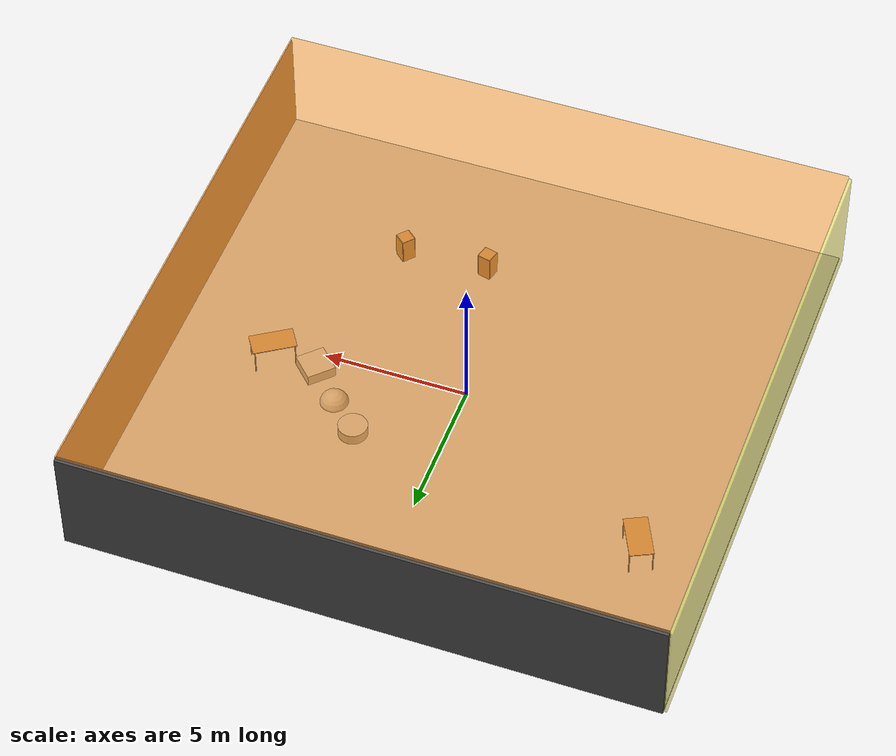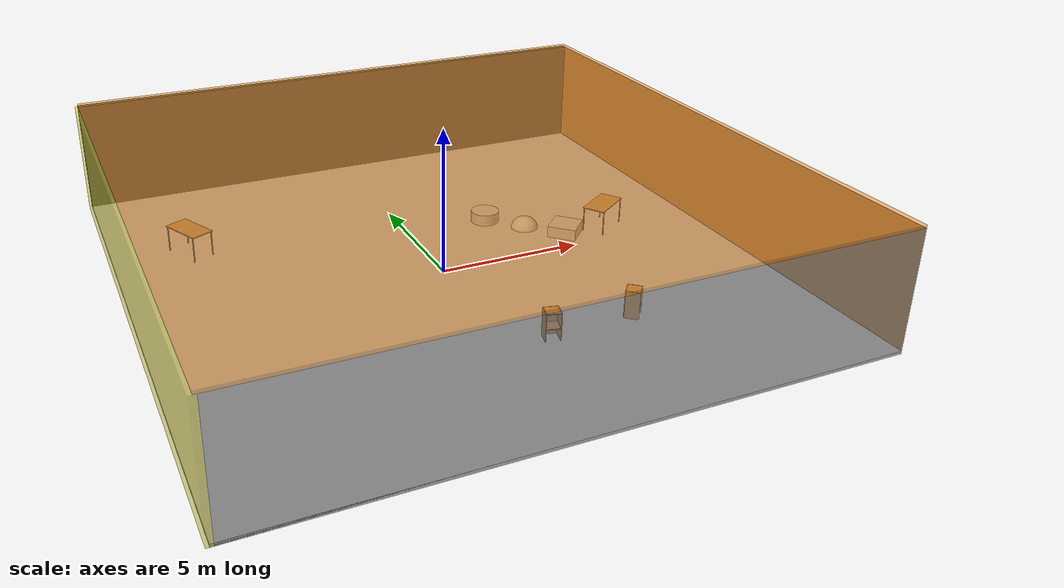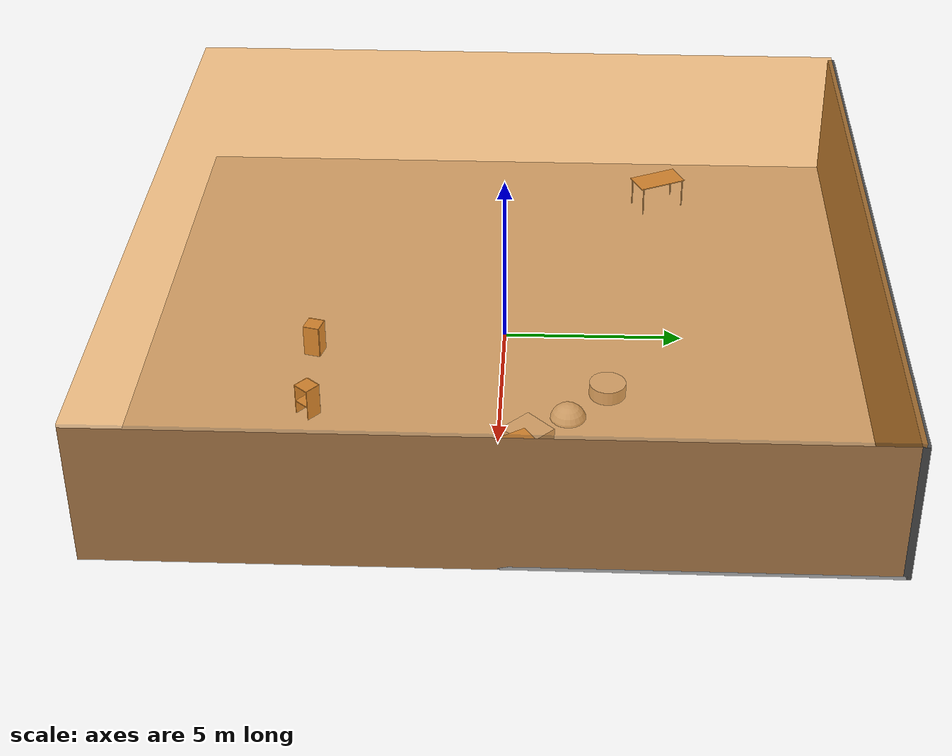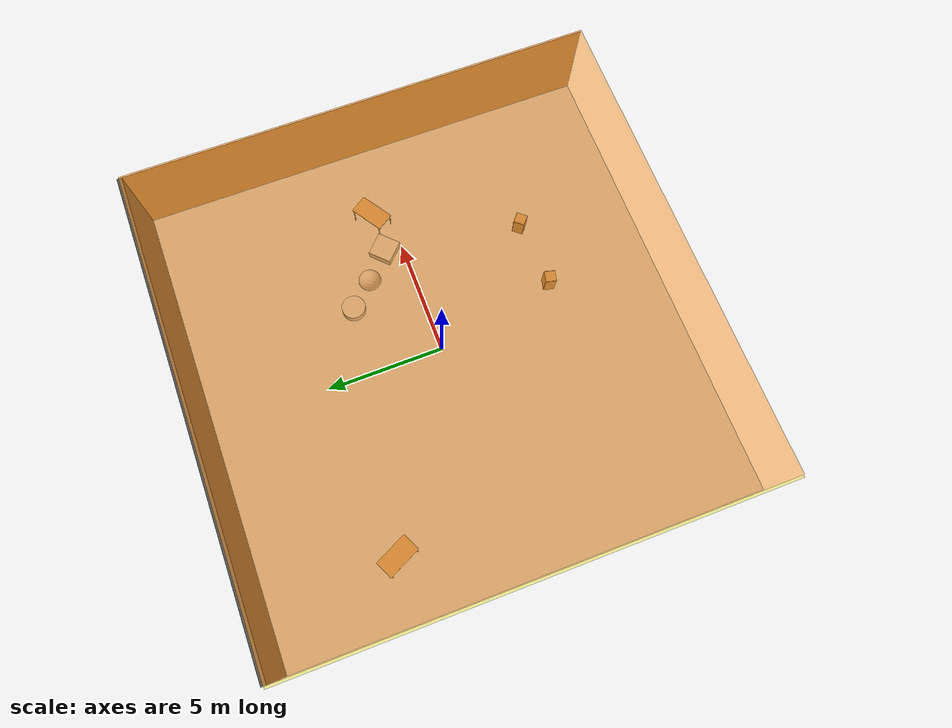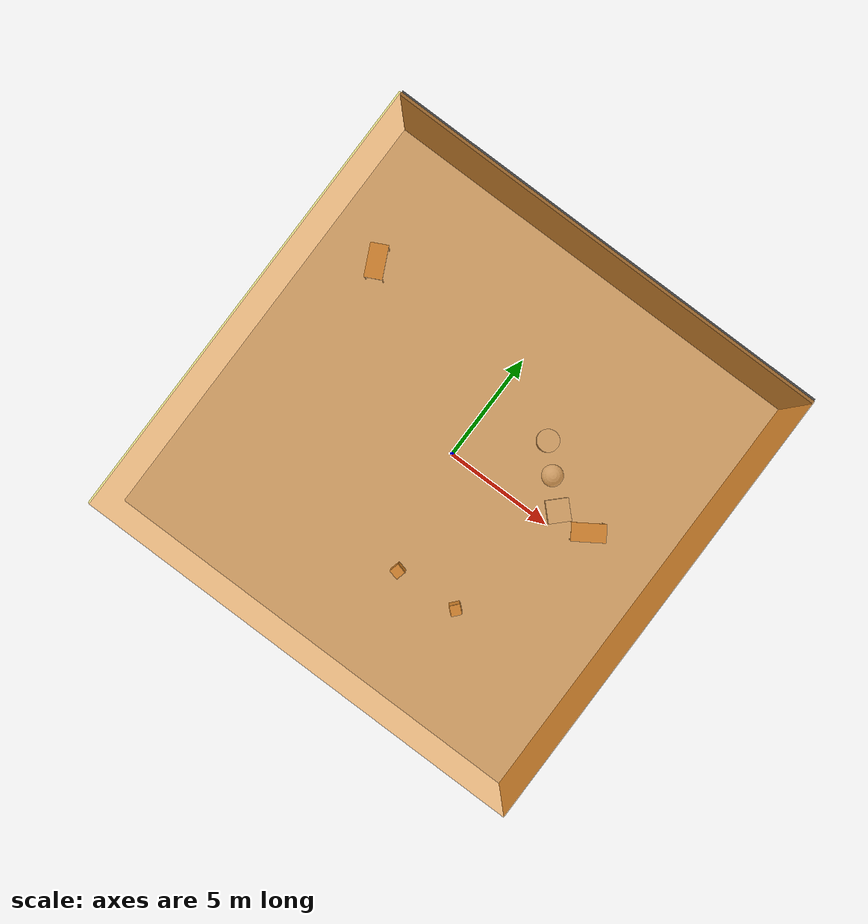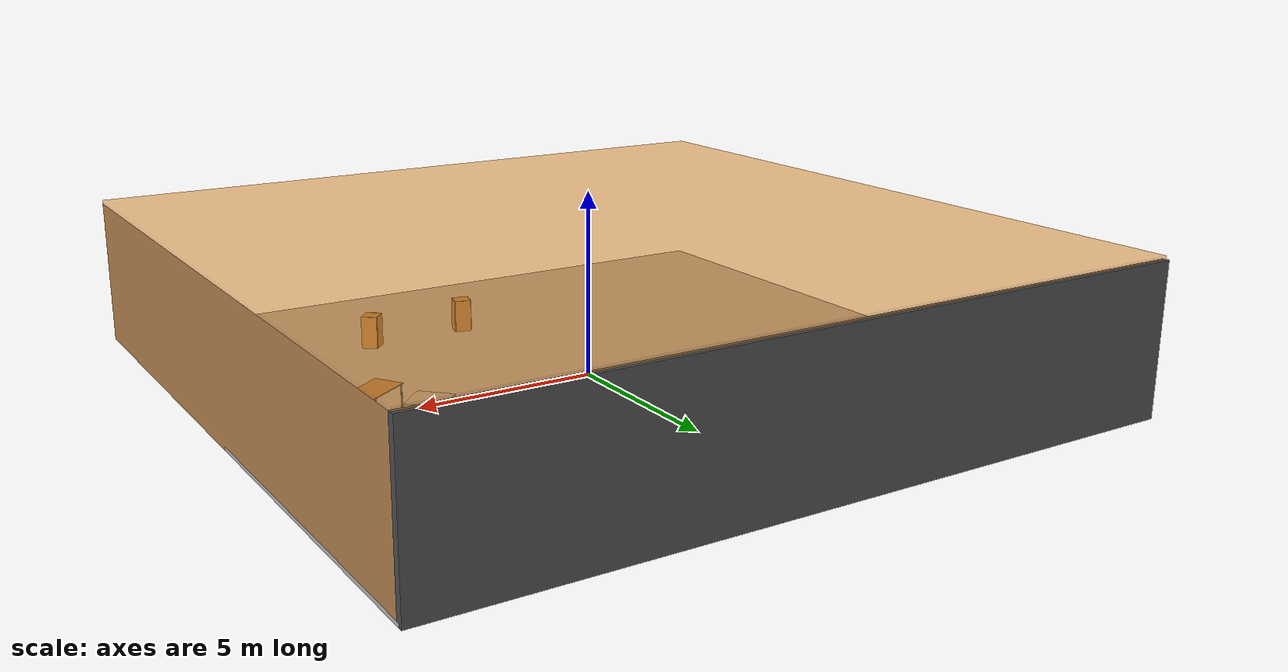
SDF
<sdf version="1.4">
 <world name="default">
  <physics type="ode">
   <max_step_size>0.001</max_step_size>
   <real_time_factor>1</real_time_factor>
   <real_time_update_rate>1000</real_time_update_rate>
   <gravity>0 0 -9.8</gravity>
  </physics>
  <scene><ambient>0.4 0.4 0.4 1</ambient><background>0.7 0.7 0.7 1</background><shadows>1</shadows></scene>
  <model name="Surrounding">
   <static>1</static>
   <link name="Ceiling">
    <collision name="Ceiling_Collision"><geometry><box><size>20 20 0.1</size></box></geometry></collision>
    <visual name="Ceiling_Visual">
     <geometry><box><size>20 20 0.1</size></box></geometry>
     <material>
      <script>
       <uri>file://media/materials/scripts/gazebo.material</uri>
       <name>Gazebo/OrangeTransparent</name>
      </script>
     </material>
    </visual>
    <pose>0 0 4.05 0 0 0</pose>
   </link>
   <link name="Wall_South">
    <collision name="Wall_South_Collision">
     <geometry><box><size>20 0 4</size></box></geometry>
     <pose>0 0 2 0 -0 0</pose>
    </collision>
    <visual name="Wall_South_Visual">
     <pose>0 0 2 0 -0 0</pose>
     <geometry><box><size>20 0 4</size></box></geometry>
     <material>
      <script><uri>file://media/materials/scripts/gazebo.material</uri><name>Gazebo/GreyTransparent</name></script>
     </material>
    </visual>
    <velocity_decay><linear>0</linear><angular>0</angular></velocity_decay>
    <pose>0 -10 0 0 -0 0</pose>
   </link>
   <link name="Wall_East">
    <collision name="Wall_21_Collision">
     <geometry><box><size>20 0 4</size></box></geometry>
     <pose>0 0 2 0 -0 0</pose>
    </collision>
    <visual name="Wall_21_Visual">
     <pose>0 0 2 0 -0 0</pose>
     <geometry><box><size>20 0 4</size></box></geometry>
     <material>
      <script><uri>file://media/materials/scripts/gazebo.material</uri><name>Gazebo/Wood</name></script>
     </material>
    </visual>
    <velocity_decay><linear>0</linear><angular>0</angular></velocity_decay>
    <pose>10 0 0 0 -0 1.5708</pose>
   </link>
   <link name="Wall_North">
    <collision name="Wall_22_Collision">
     <geometry><box><size>20 0.2 4</size></box></geometry>
     <pose>0 0 2 0 -0 0</pose>
    </collision>
    <visual name="Wall_22_Visual">
     <pose>0 0 2 0 -0 0</pose>
     <geometry><box><size>20 0.2 4</size></box></geometry>
     <material>
      <script><uri>file://media/materials/scripts/gazebo.material</uri><name>Gazebo/Road</name></script>
     </material>
    </visual>
    <velocity_decay><linear>0</linear><angular>0</angular></velocity_decay>
    <pose>0 10 0 0 -0 0</pose>
   </link>
   <link name="Wall_West">
    <collision name="Wall_23_Collision">
     <geometry><box><size>20 0.2 4</size></box></geometry>
     <pose>0 0 2 0 -0 0</pose>
    </collision>
    <visual name="Wall_23_Visual">
     <pose>0 0 2 0 -0 0</pose>
     <geometry><box><size>20 0.2 4</size></box></geometry>
     <material>
      <script>
       <uri>file://media/materials/scripts/gazebo.material</uri>
       <name>Gazebo/YellowTransparent</name>
      </script>
     </material>
    </visual>
    <velocity_decay><linear>0</linear><angular>0</angular></velocity_decay>
    <pose>-10 0 0 0 0 -1.5708</pose>
   </link>
   <link name="Ground_link">
    <collision name="collision">
     <pose>0 0 .05 0 -0 0</pose>
     <geometry><box><size>20 20 0.1</size></box></geometry>
    </collision>
    <visual name="visual">
     <pose>0 0 .05 0 -0 0</pose>
     <geometry><box><size>20 20 0.1</size></box></geometry>
     <material>
      <script><uri>file://media/materials/scripts/gazebo.material</uri><name>Gazebo/CloudySky</name></script>
     </material>
    </visual>
   </link>
   <static>1</static>
  </model>
  <spherical_coordinates>
   <surface_model>EARTH_WGS84</surface_model>
   <latitude_deg>0</latitude_deg>
   <longitude_deg>0</longitude_deg>
   <elevation>0</elevation>
   <heading_deg>0</heading_deg>
  </spherical_coordinates>
  <light name="lightball_0" type="diffuse">
   <diffuse>0.8 0.8 0.8 1</diffuse>
   <specular>0.2 0.2 0.2 1</specular>
   <attenuation>
    <range>100</range>
    <constant>0.7</constant>
    <linear>0.01</linear>
    <quadratic>0.001</quadratic>
   </attenuation>
   <direction>-0.5 0.1 -0.9</direction>
   <pose>-9.49680372922 4.6052282895 1.36932770873 0 0 0</pose>
  </light>
  <light name="lightball_1" type="diffuse">
   <diffuse>0.8 0.8 0.8 1</diffuse>
   <specular>0.2 0.2 0.2 1</specular>
   <attenuation>
    <range>100</range>
    <constant>0.7</constant>
    <linear>0.01</linear>
    <quadratic>0.001</quadratic>
   </attenuation>
   <direction>-0.5 0.1 -0.9</direction>
   <pose>-2.63660714635 -3.36903873484 1.32916333154 0 0 0</pose>
  </light>
  <light name="lightball_2" type="diffuse">
   <diffuse>0.8 0.8 0.8 1</diffuse>
   <specular>0.2 0.2 0.2 1</specular>
   <attenuation>
    <range>100</range>
    <constant>0.7</constant>
    <linear>0.01</linear>
    <quadratic>0.001</quadratic>
   </attenuation>
   <direction>-0.5 0.1 -0.9</direction>
   <pose>-3.43841361128 -4.65607609122 1.21862012841 0 0 0</pose>
  </light>
  <light name="lightball_3" type="diffuse">
   <diffuse>0.8 0.8 0.8 1</diffuse>
   <specular>0.2 0.2 0.2 1</specular>
   <attenuation>
    <range>100</range>
    <constant>0.7</constant>
    <linear>0.01</linear>
    <quadratic>0.001</quadratic>
   </attenuation>
   <direction>-0.5 0.1 -0.9</direction>
   <pose>-6.94434909145 3.57071778158 3.235887997 0 0 0</pose>
  </light>
  <light name="lightball_4" type="diffuse">
   <diffuse>0.8 0.8 0.8 1</diffuse>
   <specular>0.2 0.2 0.2 1</specular>
   <attenuation>
    <range>100</range>
    <constant>0.7</constant>
    <linear>0.01</linear>
    <quadratic>0.001</quadratic>
   </attenuation>
   <direction>-0.5 0.1 -0.9</direction>
   <pose>-7.63719666174 -1.26024085582 1.72805198514 0 0 0</pose>
  </light>
  <include><uri>model://table</uri><pose>-7.40020556222 4.54111025766 0 0 0 2.01884801074</pose></include>
  <include><uri>model://cabinet</uri><pose>1.1284066039 -5.31135167022 0 0 0 1.32557625274</pose></include>
  <include><uri>model://cabinet</uri><pose>4.03673988859 -5.13454181081 0 0 0 2.42519844015</pose></include>
  <include>
   <uri>model://textured_shapes</uri>
   <pose>3.97306972345 1.83502139024 0 0 0 0.787701320043</pose>
  </include>
  <include><uri>model://table</uri><pose>6.53486432515 0.794773015881 0 0 0 0.580902093892</pose></include>
 </world>
</sdf>

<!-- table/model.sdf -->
<sdf version="1.5">
  <model name="table">
    <static>true</static>
    <link name="link">
      <collision name="surface">
        <pose>0 0 1.0 0 0 0</pose>
        <geometry>
          <box>
            <size>1.5 0.8 0.03</size>
          </box>
        </geometry>
        <surface>
          <friction>
            <ode>
              <mu>0.6</mu>
              <mu2>0.6</mu2>
            </ode>
          </friction>
        </surface>
      </collision>
      <visual name="visual1">
        <pose>0 0 1.0 0 0 0</pose>
        <geometry>
          <box>
            <size>1.5 0.8 0.03</size>
          </box>
        </geometry>
        <material>
          <script>
            <uri>model://media/materials/scripts/gazebo.material</uri>
            <name>Gazebo/Wood</name>
          </script>
        </material>
      </visual>
      <collision name="front_left_leg">
        <pose>0.68 0.38 0.5 0 0 0</pose>
        <geometry>
          <cylinder>
            <radius>0.02</radius>
            <length>1.0</length>
          </cylinder>
        </geometry>
      </collision>
      <visual name="front_left_leg">
        <pose>0.68 0.38 0.5 0 0 0</pose>
        <geometry>
          <cylinder>
            <radius>0.02</radius>
            <length>1.0</length>
          </cylinder>
        </geometry>
        <material>
          <script>
            <uri>model://media/materials/scripts/gazebo.material</uri>
            <name>Gazebo/Grey</name>
          </script>
        </material>
      </visual>
      <collision name="front_right_leg">
        <pose>0.68 -0.38 0.5 0 0 0</pose>
        <geometry>
          <cylinder>
            <radius>0.02</radius>
            <length>1.0</length>
          </cylinder>
        </geometry>
      </collision>
      <visual name="front_right_leg">
        <pose>0.68 -0.38 0.5 0 0 0</pose>
        <geometry>
          <cylinder>
            <radius>0.02</radius>
            <length>1.0</length>
          </cylinder>
        </geometry>
        <material>
          <script>
            <uri>model://media/materials/scripts/gazebo.material</uri>
            <name>Gazebo/Grey</name>
          </script>
        </material>
      </visual>
      <collision name="back_right_leg">
        <pose>-0.68 -0.38 0.5 0 0 0</pose>
        <geometry>
          <cylinder>
            <radius>0.02</radius>
            <length>1.0</length>
          </cylinder>
        </geometry>
      </collision>
      <visual name="back_right_leg">
        <pose>-0.68 -0.38 0.5 0 0 0</pose>
        <geometry>
          <cylinder>
            <radius>0.02</radius>
            <length>1.0</length>
          </cylinder>
        </geometry>
        <material>
          <script>
            <uri>model://media/materials/scripts/gazebo.material</uri>
            <name>Gazebo/Grey</name>
          </script>
        </material>
      </visual>
      <collision name="back_left_leg">
        <pose>-0.68 0.38 0.5 0 0 0</pose>
        <geometry>
          <cylinder>
            <radius>0.02</radius>
            <length>1.0</length>
          </cylinder>
        </geometry>
      </collision>
      <visual name="back_left_leg">
        <pose>-0.68 0.38 0.5 0 0 0</pose>
        <geometry>
          <cylinder>
            <radius>0.02</radius>
            <length>1.0</length>
          </cylinder>
        </geometry>
        <material>
          <script>
            <uri>model://media/materials/scripts/gazebo.material</uri>
            <name>Gazebo/Grey</name>
          </script>
        </material>
      </visual>
    </link>
  </model>
</sdf>

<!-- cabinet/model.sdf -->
<sdf version="1.5">
  <model name="cabinet">
    <static>true</static>
    <link name="cabinet_bottom_plate">
      <inertial>
        <pose>0 0 -1 0 0 0</pose>
        <inertia>
          <ixx>2.050000</ixx>
          <ixy>0</ixy>
          <ixz>0</ixz>
          <iyy>2.050000</iyy>
          <iyz>0</iyz>
          <izz>2.050000</izz>
        </inertia>
        <mass>25.000000</mass>
      </inertial>
      <collision name="cabinet_bottom_plate_geom">
        <pose>0 0 0.010000 0 0 0</pose>
        <geometry>
          <box>
            <size>0.450000 0.450000 0.020000</size>
          </box>
        </geometry>
      </collision>
      <visual name="cabinet_bottom_plate_geom_visual">
        <pose>0 0 0.010000 0 0 0</pose>
        <geometry>
          <box>
            <size>0.450000 0.450000 0.020000</size>
          </box>
        </geometry>
        <material>
          <script>
            <uri>model://media/materials/scripts/gazebo.material</uri>
            <name>Gazebo/Wood</name>
          </script>
        </material>
      </visual>
      <collision name="cabinet_bottom_plate_geom_cabinet_back_plate">
        <pose>0.235000 0 0.510000 0 0 0</pose>
        <geometry>
          <box>
            <size>0.020000 0.450000 1.020000</size>
          </box>
        </geometry>
      </collision>
      <visual name="cabinet_bottom_plate_geom_cabinet_back_plate_visual">
        <pose>0.235000 0 0.510000 0 0 0</pose>
        <geometry>
          <box>
            <size>0.020000 0.450000 1.020000</size>
          </box>
        </geometry>
        <material>
          <script>
            <uri>model://media/materials/scripts/gazebo.material</uri>
            <name>Gazebo/Wood</name>
          </script>
        </material>
      </visual>
      <collision name="cabinet_bottom_plate_geom_cabinet_left_plate">
        <pose>0 0.235000 0.510000 0 0 0</pose>
        <geometry>
          <box>
            <size>0.450000 0.020000 1.020000</size>
          </box>
        </geometry>
      </collision>
      <visual name="cabinet_bottom_plate_geom_cabinet_left_plate_visual">
        <pose>0 0.235000 0.510000 0 0 0</pose>
        <geometry>
          <box>
            <size>0.450000 0.020000 1.020000</size>
          </box>
        </geometry>
        <material>
          <script>
            <uri>model://media/materials/scripts/gazebo.material</uri>
            <name>Gazebo/Wood</name>
          </script>
        </material>
      </visual>
      <collision name="cabinet_bottom_plate_geom_cabinet_middle_plate">
        <pose>0 0 0.510000 0 0 0</pose>
        <geometry>
          <box>
            <size>0.450000 0.450000 0.020000</size>
          </box>
        </geometry>
      </collision>
      <visual name="cabinet_bottom_plate_geom_cabinet_middle_plate_visual">
        <pose>0 0 0.510000 0 0 0</pose>
        <geometry>
          <box>
            <size>0.450000 0.450000 0.020000</size>
          </box>
        </geometry>
        <material>
          <script>
            <uri>model://media/materials/scripts/gazebo.material</uri>
            <name>Gazebo/Wood</name>
          </script>
        </material>
      </visual>
      <collision name="cabinet_bottom_plate_geom_cabinet_right_plate">
        <pose>0 -0.235000 0.510000 0 0 0</pose>
        <geometry>
          <box>
            <size>0.450000 0.020000 1.020000</size>
          </box>
        </geometry>
      </collision>
      <visual name="cabinet_bottom_plate_geom_cabinet_right_plate_visual">
        <pose>0 -0.235000 0.510000 0 0 0</pose>
        <geometry>
          <box>
            <size>0.450000 0.020000 1.020000</size>
          </box>
        </geometry>
        <material>
          <script>
            <uri>model://media/materials/scripts/gazebo.material</uri>
            <name>Gazebo/Wood</name>
          </script>
        </material>
      </visual>
      <collision name="cabinet_bottom_plate_geom_cabinet_top_plate">
        <pose>0 0 1.010000 0 0 0</pose>
        <geometry>
          <box>
            <size>0.450000 0.450000 0.020000</size>
          </box>
        </geometry>
      </collision>
      <visual name="cabinet_bottom_plate_geom_cabinet_top_plate_visual">
        <pose>0 0 1.010000 0 0 0</pose>
        <geometry>
          <box>
            <size>0.450000 0.450000 0.020000</size>
          </box>
        </geometry>
        <material>
          <script>
            <uri>model://media/materials/scripts/gazebo.material</uri>
            <name>Gazebo/Wood</name>
          </script>
        </material>
      </visual>
    </link>
  </model>
</sdf>

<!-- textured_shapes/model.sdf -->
<sdf version="1.6">
  <model name="textured_shapes">
    <pose>0 0 0.5 0 0 0</pose>
    <link name="box">
      <pose>0 -1.5 0 0 0 0</pose>
      <collision name="collision">
        <geometry>
          <box>
            <size>1 1 1</size>
          </box>
        </geometry>
      </collision>
      <visual name="visual">
        <geometry>
          <box>
            <size>1 1 1</size>
          </box>
        </geometry>
        <material>
          <script>
            <uri>model://../model_source/models/textured_shapes/materials/scripts</uri>
            <uri>model://../model_source/models/textured_shapes/materials/textures</uri>
            <name>TexturedShape/Squares</name>
          </script>
        </material>
      </visual>
    </link>
    <link name="sphere">
      <collision name="collision">
        <geometry>
          <sphere>
            <radius>0.5</radius>
          </sphere>
        </geometry>
      </collision>
      <visual name="visual">
        <geometry>
          <sphere>
            <radius>0.5</radius>
          </sphere>
        </geometry>
        <material>
          <script>
            <uri>model://../model_source/models/textured_shapes/materials/scripts</uri>
            <uri>model://../model_source/models/textured_shapes/materials/textures</uri>
            <name>TexturedShape/Squares</name>
          </script>
        </material>
      </visual>
    </link>
    <link name="cylinder">
      <pose>0 1.5 0 0 0 0</pose>
      <collision name="collision">
        <geometry>
          <cylinder>
            <radius>0.5</radius>
            <length>1</length>
          </cylinder>
        </geometry>
      </collision>
      <visual name="visual">
        <geometry>
          <cylinder>
            <radius>0.5</radius>
            <length>1</length>
          </cylinder>
        </geometry>
        <material>
          <script>
            <uri>model://../model_source/models/textured_shapes/materials/scripts</uri>
            <uri>model://../model_source/models/textured_shapes/materials/textures</uri>
            <name>TexturedShape/Squares</name>
          </script>
        </material>
      </visual>
    </link>
  </model>
</sdf>
